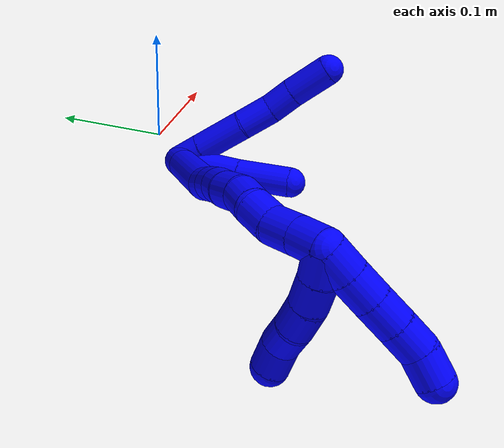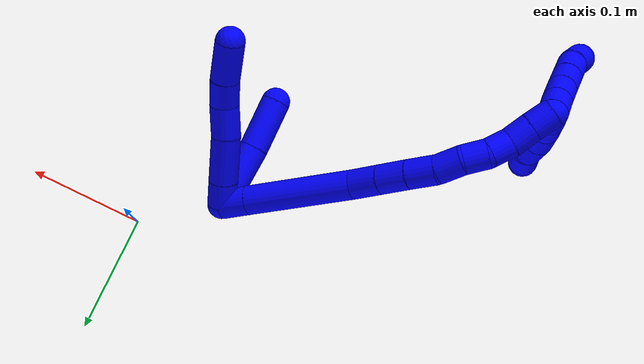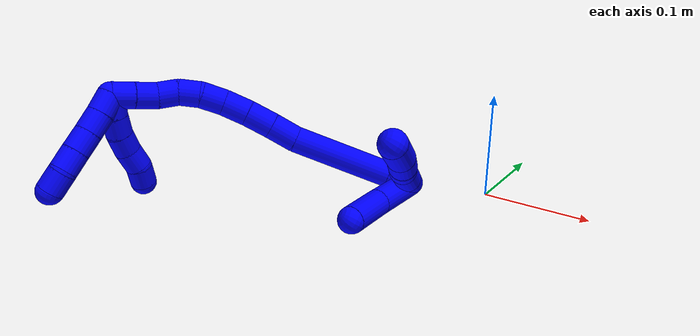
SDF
<sdf version="1.7">
 <world name="default">
  <model name="photoneo_s_sensor">
   <static>1</static>
   <pose>0 0 2 1.57079 1.57079 3.14159</pose>
   <link name="link">
    <inertial><mass>0.1</mass></inertial>
    <sensor name="sensor" type="depth">
     <update_rate>30</update_rate>
     <camera>
      <horizontal_fov>1.22</horizontal_fov>
      <image><width>1920</width><height>1200</height><format>B8G8R8</format></image>
      <clip><near>0.1</near><far>4</far></clip>
      <depth_camera><output>points</output></depth_camera>
     </camera>
     <plugin name="camera_plugin" filename="libgazebo_ros_depth_camera.so">
      <baseline>0.2</baseline>
      <alwaysOn>1</alwaysOn>
      <updateRate>0.0</updateRate>
      <cameraName>camera_ir</cameraName>
      <imageTopicName>/camera/color/image_raw</imageTopicName>
      <cameraInfoTopicName>/camera/color/camera_info</cameraInfoTopicName>
      <depthImageTopicName>/camera/depth/image_raw</depthImageTopicName>
      <depthImageCameraInfoTopicName>/camera/depth/camera_info</depthImageCameraInfoTopicName>
      <pointCloudTopicName>/camera/depth/points</pointCloudTopicName>
      <frameName>fr_optical</frameName>
      <pointCloudCutoff>0.1</pointCloudCutoff>
      <pointCloudCutoffMax>2.0</pointCloudCutoffMax>
      <distortionK1>0</distortionK1>
      <distortionK2>0</distortionK2>
      <distortionK3>0</distortionK3>
      <distortionT1>0</distortionT1>
      <distortionT2>0</distortionT2>
      <CxPrime>0</CxPrime>
      <Cx>0</Cx>
      <Cy>0</Cy>
      <focalLength>0</focalLength>
      <hackBaseline>0</hackBaseline>
     </plugin>
    </sensor>
   </link>
  </model>
  <model name="bin">
   <static>1</static>
   <link name="bottom">
    <collision name="collision-bottom">
     <pose>0 0 -0.01 0 -0 0</pose>
     <geometry><box><size>0.8 0.6 0.02</size></box></geometry>
     <surface>
      <friction><ode><mu>100</mu><mu2>100</mu2></ode></friction>
      <contact><collide_bitmask>65535</collide_bitmask></contact>
     </surface>
    </collision>
   </link>
   <link name="west_wall">
    <collision name="collision-west_wall">
     <pose>-0.41 0 0.1 0 -0 0</pose>
     <geometry><box><size>0.02 0.6 0.2</size></box></geometry>
     <surface>
      <friction><ode><mu>100</mu><mu2>100</mu2></ode></friction>
      <contact><collide_bitmask>65535</collide_bitmask></contact>
     </surface>
    </collision>
   </link>
   <link name="east_wall">
    <collision name="collision-east_wall">
     <pose>0.41 0 0.1 0 -0 0</pose>
     <geometry><box><size>0.02 0.6 0.2</size></box></geometry>
     <surface>
      <friction><ode><mu>100</mu><mu2>100</mu2></ode></friction>
      <contact><collide_bitmask>65535</collide_bitmask></contact>
     </surface>
    </collision>
   </link>
   <link name="south_wall">
    <collision name="collision-south_wall">
     <pose>0 -0.31 0.1 0 -0 0</pose>
     <geometry><box><size>0.8 0.02 0.2</size></box></geometry>
     <surface>
      <friction><ode><mu>100</mu><mu2>100</mu2></ode></friction>
      <contact><collide_bitmask>65535</collide_bitmask></contact>
     </surface>
    </collision>
   </link>
   <link name="north_wall">
    <collision name="collision-north_wall">
     <pose>0 0.31 0.1 0 -0 0</pose>
     <geometry><box><size>0.8 0.02 0.2</size></box></geometry>
     <surface>
      <friction><ode><mu>100</mu><mu2>100</mu2></ode></friction>
      <contact><collide_bitmask>65535</collide_bitmask></contact>
     </surface>
    </collision>
   </link>
  </model>
  <model name="1">
   <static>0</static>
   <link name="1">
    <collision name="collision-cylinder-e_1_2_8">
     <pose>0.008296 -0.004223 0.006235 0.595325 0.833692 0.270026</pose>
     <geometry><cylinder><radius>0.0125</radius><length>0.022409</length></cylinder></geometry>
     <surface>
      <friction><ode><mu>1.16</mu><mu2>1.16</mu2><slip1>0</slip1><slip2>0</slip2></ode></friction>
      <contact><ode><kp>1e+06</kp><kd>1</kd><max_vel>0</max_vel><min_depth>0.001</min_depth></ode></contact>
     </surface>
    </collision>
    <visual name="visual-cylinder-e_1_2_8">
     <pose>0.008296 -0.004223 0.006235 0.595325 0.833692 0.270026</pose>
     <geometry><cylinder><radius>0.0125</radius><length>0.022409</length></cylinder></geometry>
     <material><ambient>0 0 1 1</ambient></material>
    </visual>
    <collision name="collision-cylinder-e_2_8_9">
     <pose>0.03185 -0.01634 0.024078 0.597208 0.827069 0.268531</pose>
     <geometry><cylinder><radius>0.0125</radius><length>0.041465</length></cylinder></geometry>
     <surface>
      <friction><ode><mu>1.16</mu><mu2>1.16</mu2><slip1>0</slip1><slip2>0</slip2></ode></friction>
      <contact><ode><kp>1e+06</kp><kd>1</kd><max_vel>0</max_vel><min_depth>0.001</min_depth></ode></contact>
     </surface>
    </collision>
    <visual name="visual-cylinder-e_2_8_9">
     <pose>0.03185 -0.01634 0.024078 0.597208 0.827069 0.268531</pose>
     <geometry><cylinder><radius>0.0125</radius><length>0.041465</length></cylinder></geometry>
     <material><ambient>0 0 1 1</ambient></material>
    </visual>
    <collision name="collision-cylinder-e_3_9_10">
     <pose>0.058178 -0.029995 0.042104 0.731516 0.908875 0.369935</pose>
     <geometry><cylinder><radius>0.0125</radius><length>0.028068</length></cylinder></geometry>
     <surface>
      <friction><ode><mu>1.16</mu><mu2>1.16</mu2><slip1>0</slip1><slip2>0</slip2></ode></friction>
      <contact><ode><kp>1e+06</kp><kd>1</kd><max_vel>0</max_vel><min_depth>0.001</min_depth></ode></contact>
     </surface>
    </collision>
    <visual name="visual-cylinder-e_3_9_10">
     <pose>0.058178 -0.029995 0.042104 0.731516 0.908875 0.369935</pose>
     <geometry><cylinder><radius>0.0125</radius><length>0.028068</length></cylinder></geometry>
     <material><ambient>0 0 1 1</ambient></material>
    </visual>
    <collision name="collision-cylinder-e_4_10_11">
     <pose>0.078135 -0.03874 0.055174 0.421561 0.883815 0.201766</pose>
     <geometry><cylinder><radius>0.0125</radius><length>0.022989</length></cylinder></geometry>
     <surface>
      <friction><ode><mu>1.16</mu><mu2>1.16</mu2><slip1>0</slip1><slip2>0</slip2></ode></friction>
      <contact><ode><kp>1e+06</kp><kd>1</kd><max_vel>0</max_vel><min_depth>0.001</min_depth></ode></contact>
     </surface>
    </collision>
    <visual name="visual-cylinder-e_4_10_11">
     <pose>0.078135 -0.03874 0.055174 0.421561 0.883815 0.201766</pose>
     <geometry><cylinder><radius>0.0125</radius><length>0.022989</length></cylinder></geometry>
     <material><ambient>0 0 1 1</ambient></material>
    </visual>
    <collision name="collision-cylinder-e_5_11_6">
     <pose>0.099402 -0.0469 0.073114 0.430044 0.783802 0.180031</pose>
     <geometry><cylinder><radius>0.0125</radius><length>0.03507</length></cylinder></geometry>
     <surface>
      <friction><ode><mu>1.16</mu><mu2>1.16</mu2><slip1>0</slip1><slip2>0</slip2></ode></friction>
      <contact><ode><kp>1e+06</kp><kd>1</kd><max_vel>0</max_vel><min_depth>0.001</min_depth></ode></contact>
     </surface>
    </collision>
    <visual name="visual-cylinder-e_5_11_6">
     <pose>0.099402 -0.0469 0.073114 0.430044 0.783802 0.180031</pose>
     <geometry><cylinder><radius>0.0125</radius><length>0.03507</length></cylinder></geometry>
     <material><ambient>0 0 1 1</ambient></material>
    </visual>
    <collision name="collision-cylinder-e_1_2_12">
     <pose>0.005255 -0.021942 0.015984 0.941233 0.191227 0.097505</pose>
     <geometry><cylinder><radius>0.0125</radius><length>0.055302</length></cylinder></geometry>
     <surface>
      <friction><ode><mu>1.16</mu><mu2>1.16</mu2><slip1>0</slip1><slip2>0</slip2></ode></friction>
      <contact><ode><kp>1e+06</kp><kd>1</kd><max_vel>0</max_vel><min_depth>0.001</min_depth></ode></contact>
     </surface>
    </collision>
    <visual name="visual-cylinder-e_1_2_12">
     <pose>0.005255 -0.021942 0.015984 0.941233 0.191227 0.097505</pose>
     <geometry><cylinder><radius>0.0125</radius><length>0.055302</length></cylinder></geometry>
     <material><ambient>0 0 1 1</ambient></material>
    </visual>
    <collision name="collision-cylinder-e_2_12_5">
     <pose>0.016306 -0.061556 0.044362 0.959154 0.262323 0.137</pose>
     <geometry><cylinder><radius>0.0125</radius><length>0.044698</length></cylinder></geometry>
     <surface>
      <friction><ode><mu>1.16</mu><mu2>1.16</mu2><slip1>0</slip1><slip2>0</slip2></ode></friction>
      <contact><ode><kp>1e+06</kp><kd>1</kd><max_vel>0</max_vel><min_depth>0.001</min_depth></ode></contact>
     </surface>
    </collision>
    <visual name="visual-cylinder-e_2_12_5">
     <pose>0.016306 -0.061556 0.044362 0.959154 0.262323 0.137</pose>
     <geometry><cylinder><radius>0.0125</radius><length>0.044698</length></cylinder></geometry>
     <material><ambient>0 0 1 1</ambient></material>
    </visual>
    <collision name="collision-cylinder-e_1_2_13">
     <pose>-0.00335 -0.000417 0.011633 0.03581 -0.280254 -0.005052</pose>
     <geometry><cylinder><radius>0.0125</radius><length>0.024226</length></cylinder></geometry>
     <surface>
      <friction><ode><mu>1.16</mu><mu2>1.16</mu2><slip1>0</slip1><slip2>0</slip2></ode></friction>
      <contact><ode><kp>1e+06</kp><kd>1</kd><max_vel>0</max_vel><min_depth>0.001</min_depth></ode></contact>
     </surface>
    </collision>
    <visual name="visual-cylinder-e_1_2_13">
     <pose>-0.00335 -0.000417 0.011633 0.03581 -0.280254 -0.005052</pose>
     <geometry><cylinder><radius>0.0125</radius><length>0.024226</length></cylinder></geometry>
     <material><ambient>0 0 1 1</ambient></material>
    </visual>
    <collision name="collision-cylinder-e_2_13_14">
     <pose>-0.019933 -0.002295 0.068716 0.032141 -0.283172 -0.004582</pose>
     <geometry><cylinder><radius>0.0125</radius><length>0.094719</length></cylinder></geometry>
     <surface>
      <friction><ode><mu>1.16</mu><mu2>1.16</mu2><slip1>0</slip1><slip2>0</slip2></ode></friction>
      <contact><ode><kp>1e+06</kp><kd>1</kd><max_vel>0</max_vel><min_depth>0.001</min_depth></ode></contact>
     </surface>
    </collision>
    <visual name="visual-cylinder-e_2_13_14">
     <pose>-0.019933 -0.002295 0.068716 0.032141 -0.283172 -0.004582</pose>
     <geometry><cylinder><radius>0.0125</radius><length>0.094719</length></cylinder></geometry>
     <material><ambient>0 0 1 1</ambient></material>
    </visual>
    <collision name="collision-cylinder-e_3_14_15">
     <pose>-0.035139 -0.00288 0.127018 -0.068049 -0.152045 0.005185</pose>
     <geometry><cylinder><radius>0.0125</radius><length>0.026065</length></cylinder></geometry>
     <surface>
      <friction><ode><mu>1.16</mu><mu2>1.16</mu2><slip1>0</slip1><slip2>0</slip2></ode></friction>
      <contact><ode><kp>1e+06</kp><kd>1</kd><max_vel>0</max_vel><min_depth>0.001</min_depth></ode></contact>
     </surface>
    </collision>
    <visual name="visual-cylinder-e_3_14_15">
     <pose>-0.035139 -0.00288 0.127018 -0.068049 -0.152045 0.005185</pose>
     <geometry><cylinder><radius>0.0125</radius><length>0.026065</length></cylinder></geometry>
     <material><ambient>0 0 1 1</ambient></material>
    </visual>
    <collision name="collision-cylinder-e_4_15_16">
     <pose>-0.039325 -0.001429 0.152393 -0.045884 -0.174613 0.004017</pose>
     <geometry><cylinder><radius>0.0125</radius><length>0.025459</length></cylinder></geometry>
     <surface>
      <friction><ode><mu>1.16</mu><mu2>1.16</mu2><slip1>0</slip1><slip2>0</slip2></ode></friction>
      <contact><ode><kp>1e+06</kp><kd>1</kd><max_vel>0</max_vel><min_depth>0.001</min_depth></ode></contact>
     </surface>
    </collision>
    <visual name="visual-cylinder-e_4_15_16">
     <pose>-0.039325 -0.001429 0.152393 -0.045884 -0.174613 0.004017</pose>
     <geometry><cylinder><radius>0.0125</radius><length>0.025459</length></cylinder></geometry>
     <material><ambient>0 0 1 1</ambient></material>
    </visual>
    <collision name="collision-cylinder-e_5_16_17">
     <pose>-0.044395 -0.000812 0.176935 -0.003475 -0.233494 0.000408</pose>
     <geometry><cylinder><radius>0.0125</radius><length>0.024709</length></cylinder></geometry>
     <surface>
      <friction><ode><mu>1.16</mu><mu2>1.16</mu2><slip1>0</slip1><slip2>0</slip2></ode></friction>
      <contact><ode><kp>1e+06</kp><kd>1</kd><max_vel>0</max_vel><min_depth>0.001</min_depth></ode></contact>
     </surface>
    </collision>
    <visual name="visual-cylinder-e_5_16_17">
     <pose>-0.044395 -0.000812 0.176935 -0.003475 -0.233494 0.000408</pose>
     <geometry><cylinder><radius>0.0125</radius><length>0.024709</length></cylinder></geometry>
     <material><ambient>0 0 1 1</ambient></material>
    </visual>
    <collision name="collision-cylinder-e_6_17_18">
     <pose>-0.048677 -0.002723 0.200081 0.173703 -0.125312 -0.010925</pose>
     <geometry><cylinder><radius>0.0125</radius><length>0.022772</length></cylinder></geometry>
     <surface>
      <friction><ode><mu>1.16</mu><mu2>1.16</mu2><slip1>0</slip1><slip2>0</slip2></ode></friction>
      <contact><ode><kp>1e+06</kp><kd>1</kd><max_vel>0</max_vel><min_depth>0.001</min_depth></ode></contact>
     </surface>
    </collision>
    <visual name="visual-cylinder-e_6_17_18">
     <pose>-0.048677 -0.002723 0.200081 0.173703 -0.125312 -0.010925</pose>
     <geometry><cylinder><radius>0.0125</radius><length>0.022772</length></cylinder></geometry>
     <material><ambient>0 0 1 1</ambient></material>
    </visual>
    <collision name="collision-cylinder-e_7_18_19">
     <pose>-0.0538 -0.007373 0.220312 0.288041 -0.37156 -0.054501</pose>
     <geometry><cylinder><radius>0.0125</radius><length>0.020382</length></cylinder></geometry>
     <surface>
      <friction><ode><mu>1.16</mu><mu2>1.16</mu2><slip1>0</slip1><slip2>0</slip2></ode></friction>
      <contact><ode><kp>1e+06</kp><kd>1</kd><max_vel>0</max_vel><min_depth>0.001</min_depth></ode></contact>
     </surface>
    </collision>
    <visual name="visual-cylinder-e_7_18_19">
     <pose>-0.0538 -0.007373 0.220312 0.288041 -0.37156 -0.054501</pose>
     <geometry><cylinder><radius>0.0125</radius><length>0.020382</length></cylinder></geometry>
     <material><ambient>0 0 1 1</ambient></material>
    </visual>
    <collision name="collision-cylinder-e_8_19_20">
     <pose>-0.060742 -0.015711 0.237079 0.634526 -0.328384 -0.108699</pose>
     <geometry><cylinder><radius>0.0125</radius><length>0.020104</length></cylinder></geometry>
     <surface>
      <friction><ode><mu>1.16</mu><mu2>1.16</mu2><slip1>0</slip1><slip2>0</slip2></ode></friction>
      <contact><ode><kp>1e+06</kp><kd>1</kd><max_vel>0</max_vel><min_depth>0.001</min_depth></ode></contact>
     </surface>
    </collision>
    <visual name="visual-cylinder-e_8_19_20">
     <pose>-0.060742 -0.015711 0.237079 0.634526 -0.328384 -0.108699</pose>
     <geometry><cylinder><radius>0.0125</radius><length>0.020104</length></cylinder></geometry>
     <material><ambient>0 0 1 1</ambient></material>
    </visual>
    <collision name="collision-cylinder-e_9_20_21">
     <pose>-0.064733 -0.026809 0.253623 0.551003 -0.071809 -0.020308</pose>
     <geometry><cylinder><radius>0.0125</radius><length>0.020902</length></cylinder></geometry>
     <surface>
      <friction><ode><mu>1.16</mu><mu2>1.16</mu2><slip1>0</slip1><slip2>0</slip2></ode></friction>
      <contact><ode><kp>1e+06</kp><kd>1</kd><max_vel>0</max_vel><min_depth>0.001</min_depth></ode></contact>
     </surface>
    </collision>
    <visual name="visual-cylinder-e_9_20_21">
     <pose>-0.064733 -0.026809 0.253623 0.551003 -0.071809 -0.020308</pose>
     <geometry><cylinder><radius>0.0125</radius><length>0.020902</length></cylinder></geometry>
     <material><ambient>0 0 1 1</ambient></material>
    </visual>
    <collision name="collision-cylinder-e_10_21_1">
     <pose>-0.066635 -0.037468 0.271356 0.531344 -0.111723 -0.03043</pose>
     <geometry><cylinder><radius>0.0125</radius><length>0.020662</length></cylinder></geometry>
     <surface>
      <friction><ode><mu>1.16</mu><mu2>1.16</mu2><slip1>0</slip1><slip2>0</slip2></ode></friction>
      <contact><ode><kp>1e+06</kp><kd>1</kd><max_vel>0</max_vel><min_depth>0.001</min_depth></ode></contact>
     </surface>
    </collision>
    <visual name="visual-cylinder-e_10_21_1">
     <pose>-0.066635 -0.037468 0.271356 0.531344 -0.111723 -0.03043</pose>
     <geometry><cylinder><radius>0.0125</radius><length>0.020662</length></cylinder></geometry>
     <material><ambient>0 0 1 1</ambient></material>
    </visual>
    <collision name="collision-cylinder-e_1_1_22">
     <pose>-0.070291 -0.052348 0.279967 1.59554 -0.253172 -0.259444</pose>
     <geometry><cylinder><radius>0.0125</radius><length>0.02</length></cylinder></geometry>
     <surface>
      <friction><ode><mu>1.16</mu><mu2>1.16</mu2><slip1>0</slip1><slip2>0</slip2></ode></friction>
      <contact><ode><kp>1e+06</kp><kd>1</kd><max_vel>0</max_vel><min_depth>0.001</min_depth></ode></contact>
     </surface>
    </collision>
    <visual name="visual-cylinder-e_1_1_22">
     <pose>-0.070291 -0.052348 0.279967 1.59554 -0.253172 -0.259444</pose>
     <geometry><cylinder><radius>0.0125</radius><length>0.02</length></cylinder></geometry>
     <material><ambient>0 0 1 1</ambient></material>
    </visual>
    <collision name="collision-cylinder-e_2_22_23">
     <pose>-0.075274 -0.07171 0.280013 1.54134 -0.250436 -0.243238</pose>
     <geometry><cylinder><radius>0.0125</radius><length>0.02</length></cylinder></geometry>
     <surface>
      <friction><ode><mu>1.16</mu><mu2>1.16</mu2><slip1>0</slip1><slip2>0</slip2></ode></friction>
      <contact><ode><kp>1e+06</kp><kd>1</kd><max_vel>0</max_vel><min_depth>0.001</min_depth></ode></contact>
     </surface>
    </collision>
    <visual name="visual-cylinder-e_2_22_23">
     <pose>-0.075274 -0.07171 0.280013 1.54134 -0.250436 -0.243238</pose>
     <geometry><cylinder><radius>0.0125</radius><length>0.02</length></cylinder></geometry>
     <material><ambient>0 0 1 1</ambient></material>
    </visual>
    <collision name="collision-cylinder-e_3_23_24">
     <pose>-0.080184 -0.091081 0.280797 1.51936 -0.245606 -0.233401</pose>
     <geometry><cylinder><radius>0.0125</radius><length>0.02</length></cylinder></geometry>
     <surface>
      <friction><ode><mu>1.16</mu><mu2>1.16</mu2><slip1>0</slip1><slip2>0</slip2></ode></friction>
      <contact><ode><kp>1e+06</kp><kd>1</kd><max_vel>0</max_vel><min_depth>0.001</min_depth></ode></contact>
     </surface>
    </collision>
    <visual name="visual-cylinder-e_3_23_24">
     <pose>-0.080184 -0.091081 0.280797 1.51936 -0.245606 -0.233401</pose>
     <geometry><cylinder><radius>0.0125</radius><length>0.02</length></cylinder></geometry>
     <material><ambient>0 0 1 1</ambient></material>
    </visual>
    <collision name="collision-cylinder-e_4_24_25">
     <pose>-0.085139 -0.110437 0.281677 1.53135 -0.255066 -0.245298</pose>
     <geometry><cylinder><radius>0.0125</radius><length>0.02</length></cylinder></geometry>
     <surface>
      <friction><ode><mu>1.16</mu><mu2>1.16</mu2><slip1>0</slip1><slip2>0</slip2></ode></friction>
      <contact><ode><kp>1e+06</kp><kd>1</kd><max_vel>0</max_vel><min_depth>0.001</min_depth></ode></contact>
     </surface>
    </collision>
    <visual name="visual-cylinder-e_4_24_25">
     <pose>-0.085139 -0.110437 0.281677 1.53135 -0.255066 -0.245298</pose>
     <geometry><cylinder><radius>0.0125</radius><length>0.02</length></cylinder></geometry>
     <material><ambient>0 0 1 1</ambient></material>
    </visual>
    <collision name="collision-cylinder-e_5_25_4">
     <pose>-0.092769 -0.128695 0.282452 1.52503 -0.536071 -0.513141</pose>
     <geometry><cylinder><radius>0.0125</radius><length>0.02</length></cylinder></geometry>
     <surface>
      <friction><ode><mu>1.16</mu><mu2>1.16</mu2><slip1>0</slip1><slip2>0</slip2></ode></friction>
      <contact><ode><kp>1e+06</kp><kd>1</kd><max_vel>0</max_vel><min_depth>0.001</min_depth></ode></contact>
     </surface>
    </collision>
    <visual name="visual-cylinder-e_5_25_4">
     <pose>-0.092769 -0.128695 0.282452 1.52503 -0.536071 -0.513141</pose>
     <geometry><cylinder><radius>0.0125</radius><length>0.02</length></cylinder></geometry>
     <material><ambient>0 0 1 1</ambient></material>
    </visual>
    <collision name="collision-cylinder-e_1_1_26">
     <pose>-0.074558 -0.047321 0.274504 2.45745 -0.743788 -1.66181</pose>
     <geometry><cylinder><radius>0.0125</radius><length>0.02</length></cylinder></geometry>
     <surface>
      <friction><ode><mu>1.16</mu><mu2>1.16</mu2><slip1>0</slip1><slip2>0</slip2></ode></friction>
      <contact><ode><kp>1e+06</kp><kd>1</kd><max_vel>0</max_vel><min_depth>0.001</min_depth></ode></contact>
     </surface>
    </collision>
    <visual name="visual-cylinder-e_1_1_26">
     <pose>-0.074558 -0.047321 0.274504 2.45745 -0.743788 -1.66181</pose>
     <geometry><cylinder><radius>0.0125</radius><length>0.02</length></cylinder></geometry>
     <material><ambient>0 0 1 1</ambient></material>
    </visual>
    <collision name="collision-cylinder-e_2_26_27">
     <pose>-0.088136 -0.055616 0.262446 2.62093 -0.748804 -1.95011</pose>
     <geometry><cylinder><radius>0.0125</radius><length>0.02</length></cylinder></geometry>
     <surface>
      <friction><ode><mu>1.16</mu><mu2>1.16</mu2><slip1>0</slip1><slip2>0</slip2></ode></friction>
      <contact><ode><kp>1e+06</kp><kd>1</kd><max_vel>0</max_vel><min_depth>0.001</min_depth></ode></contact>
     </surface>
    </collision>
    <visual name="visual-cylinder-e_2_26_27">
     <pose>-0.088136 -0.055616 0.262446 2.62093 -0.748804 -1.95011</pose>
     <geometry><cylinder><radius>0.0125</radius><length>0.02</length></cylinder></geometry>
     <material><ambient>0 0 1 1</ambient></material>
    </visual>
    <collision name="collision-cylinder-e_3_27_28">
     <pose>-0.101354 -0.061649 0.248798 2.82506 -0.695839 -2.31246</pose>
     <geometry><cylinder><radius>0.0125</radius><length>0.02</length></cylinder></geometry>
     <surface>
      <friction><ode><mu>1.16</mu><mu2>1.16</mu2><slip1>0</slip1><slip2>0</slip2></ode></friction>
      <contact><ode><kp>1e+06</kp><kd>1</kd><max_vel>0</max_vel><min_depth>0.001</min_depth></ode></contact>
     </surface>
    </collision>
    <visual name="visual-cylinder-e_3_27_28">
     <pose>-0.101354 -0.061649 0.248798 2.82506 -0.695839 -2.31246</pose>
     <geometry><cylinder><radius>0.0125</radius><length>0.02</length></cylinder></geometry>
     <material><ambient>0 0 1 1</ambient></material>
    </visual>
    <collision name="collision-cylinder-e_4_28_29">
     <pose>-0.112716 -0.066255 0.233104 2.88355 -0.518025 -2.23092</pose>
     <geometry><cylinder><radius>0.0125</radius><length>0.02</length></cylinder></geometry>
     <surface>
      <friction><ode><mu>1.16</mu><mu2>1.16</mu2><slip1>0</slip1><slip2>0</slip2></ode></friction>
      <contact><ode><kp>1e+06</kp><kd>1</kd><max_vel>0</max_vel><min_depth>0.001</min_depth></ode></contact>
     </surface>
    </collision>
    <visual name="visual-cylinder-e_4_28_29">
     <pose>-0.112716 -0.066255 0.233104 2.88355 -0.518025 -2.23092</pose>
     <geometry><cylinder><radius>0.0125</radius><length>0.02</length></cylinder></geometry>
     <material><ambient>0 0 1 1</ambient></material>
    </visual>
    <collision name="collision-cylinder-e_5_29_3">
     <pose>-0.124801 -0.071467 0.218368 2.70002 -0.794268 -2.15888</pose>
     <geometry><cylinder><radius>0.0125</radius><length>0.02</length></cylinder></geometry>
     <surface>
      <friction><ode><mu>1.16</mu><mu2>1.16</mu2><slip1>0</slip1><slip2>0</slip2></ode></friction>
      <contact><ode><kp>1e+06</kp><kd>1</kd><max_vel>0</max_vel><min_depth>0.001</min_depth></ode></contact>
     </surface>
    </collision>
    <visual name="visual-cylinder-e_5_29_3">
     <pose>-0.124801 -0.071467 0.218368 2.70002 -0.794268 -2.15888</pose>
     <geometry><cylinder><radius>0.0125</radius><length>0.02</length></cylinder></geometry>
     <material><ambient>0 0 1 1</ambient></material>
    </visual>
    <collision name="collision-sphere-3">
     <pose>-0.131934 -0.074462 0.212032 0 -0 0</pose>
     <geometry><sphere><radius>0.0125</radius></sphere></geometry>
     <surface>
      <friction><ode><mu>1.16</mu><mu2>1.16</mu2><slip1>0</slip1><slip2>0</slip2></ode></friction>
      <contact><ode><kp>1e+06</kp><kd>1</kd><max_vel>0</max_vel><min_depth>0.001</min_depth></ode></contact>
     </surface>
    </collision>
    <visual name="visual-sphere-3">
     <pose>-0.131934 -0.074462 0.212032 0 -0 0</pose>
     <geometry><sphere><radius>0.0125</radius></sphere></geometry>
     <material><ambient>0 0 1 1</ambient></material>
    </visual>
    <collision name="collision-sphere-29">
     <pose>-0.117667 -0.068472 0.224704 0 -0 0</pose>
     <geometry><sphere><radius>0.0125</radius></sphere></geometry>
     <surface>
      <friction><ode><mu>1.16</mu><mu2>1.16</mu2><slip1>0</slip1><slip2>0</slip2></ode></friction>
      <contact><ode><kp>1e+06</kp><kd>1</kd><max_vel>0</max_vel><min_depth>0.001</min_depth></ode></contact>
     </surface>
    </collision>
    <visual name="visual-sphere-29">
     <pose>-0.117667 -0.068472 0.224704 0 -0 0</pose>
     <geometry><sphere><radius>0.0125</radius></sphere></geometry>
     <material><ambient>0 0 1 1</ambient></material>
    </visual>
    <collision name="collision-sphere-28">
     <pose>-0.107764 -0.064038 0.241504 0 -0 0</pose>
     <geometry><sphere><radius>0.0125</radius></sphere></geometry>
     <surface>
      <friction><ode><mu>1.16</mu><mu2>1.16</mu2><slip1>0</slip1><slip2>0</slip2></ode></friction>
      <contact><ode><kp>1e+06</kp><kd>1</kd><max_vel>0</max_vel><min_depth>0.001</min_depth></ode></contact>
     </surface>
    </collision>
    <visual name="visual-sphere-28">
     <pose>-0.107764 -0.064038 0.241504 0 -0 0</pose>
     <geometry><sphere><radius>0.0125</radius></sphere></geometry>
     <material><ambient>0 0 1 1</ambient></material>
    </visual>
    <collision name="collision-sphere-27">
     <pose>-0.094944 -0.05926 0.256092 0 -0 0</pose>
     <geometry><sphere><radius>0.0125</radius></sphere></geometry>
     <surface>
      <friction><ode><mu>1.16</mu><mu2>1.16</mu2><slip1>0</slip1><slip2>0</slip2></ode></friction>
      <contact><ode><kp>1e+06</kp><kd>1</kd><max_vel>0</max_vel><min_depth>0.001</min_depth></ode></contact>
     </surface>
    </collision>
    <visual name="visual-sphere-27">
     <pose>-0.094944 -0.05926 0.256092 0 -0 0</pose>
     <geometry><sphere><radius>0.0125</radius></sphere></geometry>
     <material><ambient>0 0 1 1</ambient></material>
    </visual>
    <collision name="collision-sphere-26">
     <pose>-0.081328 -0.051972 0.268801 0 -0 0</pose>
     <geometry><sphere><radius>0.0125</radius></sphere></geometry>
     <surface>
      <friction><ode><mu>1.16</mu><mu2>1.16</mu2><slip1>0</slip1><slip2>0</slip2></ode></friction>
      <contact><ode><kp>1e+06</kp><kd>1</kd><max_vel>0</max_vel><min_depth>0.001</min_depth></ode></contact>
     </surface>
    </collision>
    <visual name="visual-sphere-26">
     <pose>-0.081328 -0.051972 0.268801 0 -0 0</pose>
     <geometry><sphere><radius>0.0125</radius></sphere></geometry>
     <material><ambient>0 0 1 1</ambient></material>
    </visual>
    <collision name="collision-sphere-4">
     <pose>-0.097877 -0.137283 0.282846 0 -0 0</pose>
     <geometry><sphere><radius>0.0125</radius></sphere></geometry>
     <surface>
      <friction><ode><mu>1.16</mu><mu2>1.16</mu2><slip1>0</slip1><slip2>0</slip2></ode></friction>
      <contact><ode><kp>1e+06</kp><kd>1</kd><max_vel>0</max_vel><min_depth>0.001</min_depth></ode></contact>
     </surface>
    </collision>
    <visual name="visual-sphere-4">
     <pose>-0.097877 -0.137283 0.282846 0 -0 0</pose>
     <geometry><sphere><radius>0.0125</radius></sphere></geometry>
     <material><ambient>0 0 1 1</ambient></material>
    </visual>
    <collision name="collision-sphere-25">
     <pose>-0.087662 -0.120106 0.282059 0 -0 0</pose>
     <geometry><sphere><radius>0.0125</radius></sphere></geometry>
     <surface>
      <friction><ode><mu>1.16</mu><mu2>1.16</mu2><slip1>0</slip1><slip2>0</slip2></ode></friction>
      <contact><ode><kp>1e+06</kp><kd>1</kd><max_vel>0</max_vel><min_depth>0.001</min_depth></ode></contact>
     </surface>
    </collision>
    <visual name="visual-sphere-25">
     <pose>-0.087662 -0.120106 0.282059 0 -0 0</pose>
     <geometry><sphere><radius>0.0125</radius></sphere></geometry>
     <material><ambient>0 0 1 1</ambient></material>
    </visual>
    <collision name="collision-sphere-24">
     <pose>-0.082616 -0.100768 0.281296 0 -0 0</pose>
     <geometry><sphere><radius>0.0125</radius></sphere></geometry>
     <surface>
      <friction><ode><mu>1.16</mu><mu2>1.16</mu2><slip1>0</slip1><slip2>0</slip2></ode></friction>
      <contact><ode><kp>1e+06</kp><kd>1</kd><max_vel>0</max_vel><min_depth>0.001</min_depth></ode></contact>
     </surface>
    </collision>
    <visual name="visual-sphere-24">
     <pose>-0.082616 -0.100768 0.281296 0 -0 0</pose>
     <geometry><sphere><radius>0.0125</radius></sphere></geometry>
     <material><ambient>0 0 1 1</ambient></material>
    </visual>
    <collision name="collision-sphere-23">
     <pose>-0.077753 -0.081394 0.280298 0 -0 0</pose>
     <geometry><sphere><radius>0.0125</radius></sphere></geometry>
     <surface>
      <friction><ode><mu>1.16</mu><mu2>1.16</mu2><slip1>0</slip1><slip2>0</slip2></ode></friction>
      <contact><ode><kp>1e+06</kp><kd>1</kd><max_vel>0</max_vel><min_depth>0.001</min_depth></ode></contact>
     </surface>
    </collision>
    <visual name="visual-sphere-23">
     <pose>-0.077753 -0.081394 0.280298 0 -0 0</pose>
     <geometry><sphere><radius>0.0125</radius></sphere></geometry>
     <material><ambient>0 0 1 1</ambient></material>
    </visual>
    <collision name="collision-sphere-22">
     <pose>-0.072796 -0.062027 0.279728 0 -0 0</pose>
     <geometry><sphere><radius>0.0125</radius></sphere></geometry>
     <surface>
      <friction><ode><mu>1.16</mu><mu2>1.16</mu2><slip1>0</slip1><slip2>0</slip2></ode></friction>
      <contact><ode><kp>1e+06</kp><kd>1</kd><max_vel>0</max_vel><min_depth>0.001</min_depth></ode></contact>
     </surface>
    </collision>
    <visual name="visual-sphere-22">
     <pose>-0.072796 -0.062027 0.279728 0 -0 0</pose>
     <geometry><sphere><radius>0.0125</radius></sphere></geometry>
     <material><ambient>0 0 1 1</ambient></material>
    </visual>
    <collision name="collision-sphere-1">
     <pose>-0.067787 -0.04267 0.280207 0 -0 0</pose>
     <geometry><sphere><radius>0.0125</radius></sphere></geometry>
     <surface>
      <friction><ode><mu>1.16</mu><mu2>1.16</mu2><slip1>0</slip1><slip2>0</slip2></ode></friction>
      <contact><ode><kp>1e+06</kp><kd>1</kd><max_vel>0</max_vel><min_depth>0.001</min_depth></ode></contact>
     </surface>
    </collision>
    <visual name="visual-sphere-1">
     <pose>-0.067787 -0.04267 0.280207 0 -0 0</pose>
     <geometry><sphere><radius>0.0125</radius></sphere></geometry>
     <material><ambient>0 0 1 1</ambient></material>
    </visual>
    <collision name="collision-sphere-21">
     <pose>-0.065483 -0.032266 0.262505 0 -0 0</pose>
     <geometry><sphere><radius>0.0125</radius></sphere></geometry>
     <surface>
      <friction><ode><mu>1.16</mu><mu2>1.16</mu2><slip1>0</slip1><slip2>0</slip2></ode></friction>
      <contact><ode><kp>1e+06</kp><kd>1</kd><max_vel>0</max_vel><min_depth>0.001</min_depth></ode></contact>
     </surface>
    </collision>
    <visual name="visual-sphere-21">
     <pose>-0.065483 -0.032266 0.262505 0 -0 0</pose>
     <geometry><sphere><radius>0.0125</radius></sphere></geometry>
     <material><ambient>0 0 1 1</ambient></material>
    </visual>
    <collision name="collision-sphere-6">
     <pose>0.111781 -0.052078 0.084402 0 -0 0</pose>
     <geometry><sphere><radius>0.0125</radius></sphere></geometry>
     <surface>
      <friction><ode><mu>1.16</mu><mu2>1.16</mu2><slip1>0</slip1><slip2>0</slip2></ode></friction>
      <contact><ode><kp>1e+06</kp><kd>1</kd><max_vel>0</max_vel><min_depth>0.001</min_depth></ode></contact>
     </surface>
    </collision>
    <visual name="visual-sphere-6">
     <pose>0.111781 -0.052078 0.084402 0 -0 0</pose>
     <geometry><sphere><radius>0.0125</radius></sphere></geometry>
     <material><ambient>0 0 1 1</ambient></material>
    </visual>
    <collision name="collision-sphere-11">
     <pose>0.087022 -0.041723 0.061826 0 -0 0</pose>
     <geometry><sphere><radius>0.0125</radius></sphere></geometry>
     <surface>
      <friction><ode><mu>1.16</mu><mu2>1.16</mu2><slip1>0</slip1><slip2>0</slip2></ode></friction>
      <contact><ode><kp>1e+06</kp><kd>1</kd><max_vel>0</max_vel><min_depth>0.001</min_depth></ode></contact>
     </surface>
    </collision>
    <visual name="visual-sphere-11">
     <pose>0.087022 -0.041723 0.061826 0 -0 0</pose>
     <geometry><sphere><radius>0.0125</radius></sphere></geometry>
     <material><ambient>0 0 1 1</ambient></material>
    </visual>
    <collision name="collision-sphere-10">
     <pose>0.069248 -0.035757 0.048522 0 -0 0</pose>
     <geometry><sphere><radius>0.0125</radius></sphere></geometry>
     <surface>
      <friction><ode><mu>1.16</mu><mu2>1.16</mu2><slip1>0</slip1><slip2>0</slip2></ode></friction>
      <contact><ode><kp>1e+06</kp><kd>1</kd><max_vel>0</max_vel><min_depth>0.001</min_depth></ode></contact>
     </surface>
    </collision>
    <visual name="visual-sphere-10">
     <pose>0.069248 -0.035757 0.048522 0 -0 0</pose>
     <geometry><sphere><radius>0.0125</radius></sphere></geometry>
     <material><ambient>0 0 1 1</ambient></material>
    </visual>
    <collision name="collision-sphere-9">
     <pose>0.047108 -0.024233 0.035685 0 -0 0</pose>
     <geometry><sphere><radius>0.0125</radius></sphere></geometry>
     <surface>
      <friction><ode><mu>1.16</mu><mu2>1.16</mu2><slip1>0</slip1><slip2>0</slip2></ode></friction>
      <contact><ode><kp>1e+06</kp><kd>1</kd><max_vel>0</max_vel><min_depth>0.001</min_depth></ode></contact>
     </surface>
    </collision>
    <visual name="visual-sphere-9">
     <pose>0.047108 -0.024233 0.035685 0 -0 0</pose>
     <geometry><sphere><radius>0.0125</radius></sphere></geometry>
     <material><ambient>0 0 1 1</ambient></material>
    </visual>
    <collision name="collision-sphere-2">
     <geometry><sphere><radius>0.0125</radius></sphere></geometry>
     <surface>
      <friction><ode><mu>1.16</mu><mu2>1.16</mu2><slip1>0</slip1><slip2>0</slip2></ode></friction>
      <contact><ode><kp>1e+06</kp><kd>1</kd><max_vel>0</max_vel><min_depth>0.001</min_depth></ode></contact>
     </surface>
    </collision>
    <visual name="visual-sphere-2">
     <geometry><sphere><radius>0.0125</radius></sphere></geometry>
     <material><ambient>0 0 1 1</ambient></material>
    </visual>
    <collision name="collision-sphere-19">
     <pose>-0.0575 -0.01007 0.229416 0 -0 0</pose>
     <geometry><sphere><radius>0.0125</radius></sphere></geometry>
     <surface>
      <friction><ode><mu>1.16</mu><mu2>1.16</mu2><slip1>0</slip1><slip2>0</slip2></ode></friction>
      <contact><ode><kp>1e+06</kp><kd>1</kd><max_vel>0</max_vel><min_depth>0.001</min_depth></ode></contact>
     </surface>
    </collision>
    <visual name="visual-sphere-19">
     <pose>-0.0575 -0.01007 0.229416 0 -0 0</pose>
     <geometry><sphere><radius>0.0125</radius></sphere></geometry>
     <material><ambient>0 0 1 1</ambient></material>
    </visual>
    <collision name="collision-sphere-8">
     <pose>0.016592 -0.008446 0.012471 0 -0 0</pose>
     <geometry><sphere><radius>0.0125</radius></sphere></geometry>
     <surface>
      <friction><ode><mu>1.16</mu><mu2>1.16</mu2><slip1>0</slip1><slip2>0</slip2></ode></friction>
      <contact><ode><kp>1e+06</kp><kd>1</kd><max_vel>0</max_vel><min_depth>0.001</min_depth></ode></contact>
     </surface>
    </collision>
    <visual name="visual-sphere-8">
     <pose>0.016592 -0.008446 0.012471 0 -0 0</pose>
     <geometry><sphere><radius>0.0125</radius></sphere></geometry>
     <material><ambient>0 0 1 1</ambient></material>
    </visual>
    <collision name="collision-sphere-12">
     <pose>0.010511 -0.043885 0.031968 0 -0 0</pose>
     <geometry><sphere><radius>0.0125</radius></sphere></geometry>
     <surface>
      <friction><ode><mu>1.16</mu><mu2>1.16</mu2><slip1>0</slip1><slip2>0</slip2></ode></friction>
      <contact><ode><kp>1e+06</kp><kd>1</kd><max_vel>0</max_vel><min_depth>0.001</min_depth></ode></contact>
     </surface>
    </collision>
    <visual name="visual-sphere-12">
     <pose>0.010511 -0.043885 0.031968 0 -0 0</pose>
     <geometry><sphere><radius>0.0125</radius></sphere></geometry>
     <material><ambient>0 0 1 1</ambient></material>
    </visual>
    <collision name="collision-sphere-5">
     <pose>0.022102 -0.079228 0.056756 0 -0 0</pose>
     <geometry><sphere><radius>0.0125</radius></sphere></geometry>
     <surface>
      <friction><ode><mu>1.16</mu><mu2>1.16</mu2><slip1>0</slip1><slip2>0</slip2></ode></friction>
      <contact><ode><kp>1e+06</kp><kd>1</kd><max_vel>0</max_vel><min_depth>0.001</min_depth></ode></contact>
     </surface>
    </collision>
    <visual name="visual-sphere-5">
     <pose>0.022102 -0.079228 0.056756 0 -0 0</pose>
     <geometry><sphere><radius>0.0125</radius></sphere></geometry>
     <material><ambient>0 0 1 1</ambient></material>
    </visual>
    <collision name="collision-sphere-13">
     <pose>-0.006701 -0.000834 0.023266 0 -0 0</pose>
     <geometry><sphere><radius>0.0125</radius></sphere></geometry>
     <surface>
      <friction><ode><mu>1.16</mu><mu2>1.16</mu2><slip1>0</slip1><slip2>0</slip2></ode></friction>
      <contact><ode><kp>1e+06</kp><kd>1</kd><max_vel>0</max_vel><min_depth>0.001</min_depth></ode></contact>
     </surface>
    </collision>
    <visual name="visual-sphere-13">
     <pose>-0.006701 -0.000834 0.023266 0 -0 0</pose>
     <geometry><sphere><radius>0.0125</radius></sphere></geometry>
     <material><ambient>0 0 1 1</ambient></material>
    </visual>
    <collision name="collision-sphere-14">
     <pose>-0.033166 -0.003756 0.114165 0 -0 0</pose>
     <geometry><sphere><radius>0.0125</radius></sphere></geometry>
     <surface>
      <friction><ode><mu>1.16</mu><mu2>1.16</mu2><slip1>0</slip1><slip2>0</slip2></ode></friction>
      <contact><ode><kp>1e+06</kp><kd>1</kd><max_vel>0</max_vel><min_depth>0.001</min_depth></ode></contact>
     </surface>
    </collision>
    <visual name="visual-sphere-14">
     <pose>-0.033166 -0.003756 0.114165 0 -0 0</pose>
     <geometry><sphere><radius>0.0125</radius></sphere></geometry>
     <material><ambient>0 0 1 1</ambient></material>
    </visual>
    <collision name="collision-sphere-15">
     <pose>-0.037113 -0.002004 0.13987 0 -0 0</pose>
     <geometry><sphere><radius>0.0125</radius></sphere></geometry>
     <surface>
      <friction><ode><mu>1.16</mu><mu2>1.16</mu2><slip1>0</slip1><slip2>0</slip2></ode></friction>
      <contact><ode><kp>1e+06</kp><kd>1</kd><max_vel>0</max_vel><min_depth>0.001</min_depth></ode></contact>
     </surface>
    </collision>
    <visual name="visual-sphere-15">
     <pose>-0.037113 -0.002004 0.13987 0 -0 0</pose>
     <geometry><sphere><radius>0.0125</radius></sphere></geometry>
     <material><ambient>0 0 1 1</ambient></material>
    </visual>
    <collision name="collision-sphere-16">
     <pose>-0.041536 -0.000854 0.164916 0 -0 0</pose>
     <geometry><sphere><radius>0.0125</radius></sphere></geometry>
     <surface>
      <friction><ode><mu>1.16</mu><mu2>1.16</mu2><slip1>0</slip1><slip2>0</slip2></ode></friction>
      <contact><ode><kp>1e+06</kp><kd>1</kd><max_vel>0</max_vel><min_depth>0.001</min_depth></ode></contact>
     </surface>
    </collision>
    <visual name="visual-sphere-16">
     <pose>-0.041536 -0.000854 0.164916 0 -0 0</pose>
     <geometry><sphere><radius>0.0125</radius></sphere></geometry>
     <material><ambient>0 0 1 1</ambient></material>
    </visual>
    <collision name="collision-sphere-17">
     <pose>-0.047253 -0.000771 0.188954 0 -0 0</pose>
     <geometry><sphere><radius>0.0125</radius></sphere></geometry>
     <surface>
      <friction><ode><mu>1.16</mu><mu2>1.16</mu2><slip1>0</slip1><slip2>0</slip2></ode></friction>
      <contact><ode><kp>1e+06</kp><kd>1</kd><max_vel>0</max_vel><min_depth>0.001</min_depth></ode></contact>
     </surface>
    </collision>
    <visual name="visual-sphere-17">
     <pose>-0.047253 -0.000771 0.188954 0 -0 0</pose>
     <geometry><sphere><radius>0.0125</radius></sphere></geometry>
     <material><ambient>0 0 1 1</ambient></material>
    </visual>
    <collision name="collision-sphere-18">
     <pose>-0.0501 -0.004676 0.211208 0 -0 0</pose>
     <geometry><sphere><radius>0.0125</radius></sphere></geometry>
     <surface>
      <friction><ode><mu>1.16</mu><mu2>1.16</mu2><slip1>0</slip1><slip2>0</slip2></ode></friction>
      <contact><ode><kp>1e+06</kp><kd>1</kd><max_vel>0</max_vel><min_depth>0.001</min_depth></ode></contact>
     </surface>
    </collision>
    <visual name="visual-sphere-18">
     <pose>-0.0501 -0.004676 0.211208 0 -0 0</pose>
     <geometry><sphere><radius>0.0125</radius></sphere></geometry>
     <material><ambient>0 0 1 1</ambient></material>
    </visual>
    <collision name="collision-sphere-20">
     <pose>-0.063983 -0.021351 0.244742 0 -0 0</pose>
     <geometry><sphere><radius>0.0125</radius></sphere></geometry>
     <surface>
      <friction><ode><mu>1.16</mu><mu2>1.16</mu2><slip1>0</slip1><slip2>0</slip2></ode></friction>
      <contact><ode><kp>1e+06</kp><kd>1</kd><max_vel>0</max_vel><min_depth>0.001</min_depth></ode></contact>
     </surface>
    </collision>
    <visual name="visual-sphere-20">
     <pose>-0.063983 -0.021351 0.244742 0 -0 0</pose>
     <geometry><sphere><radius>0.0125</radius></sphere></geometry>
     <material><ambient>0 0 1 1</ambient></material>
    </visual>
    <inertial>
     <pose>-0.026403 -0.033957 0.139914 0 -0 0</pose>
     <mass>0.75</mass>
     <inertia><ixx>0.000126</ixx><ixy>0</ixy><ixz>0</ixz><iyy>0.000105</iyy><iyz>0</iyz><izz>8e-05</izz></inertia>
    </inertial>
   </link>
   <pose>-0.059883 -0.044639 0.013005 0.789436 -0.640573 -0.296283</pose>
  </model>
 </world>
</sdf>
